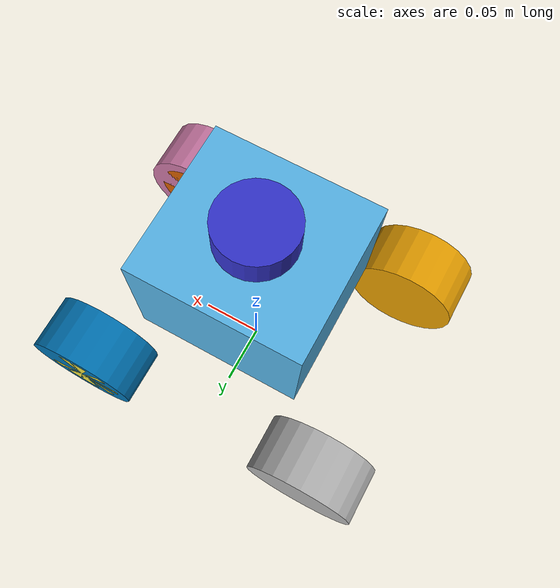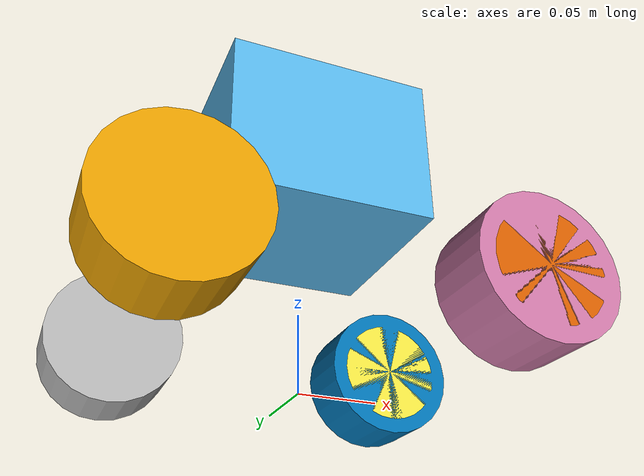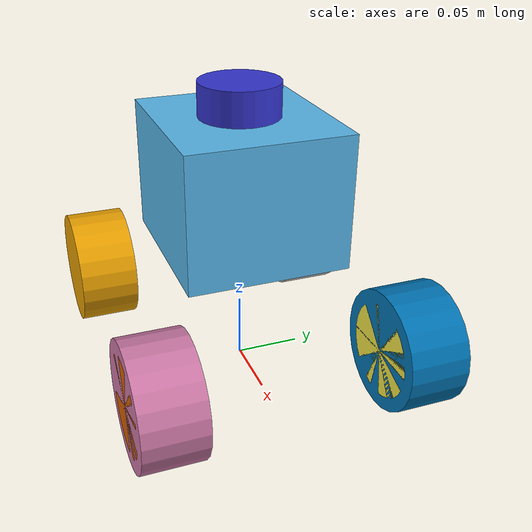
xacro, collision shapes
<?xml version="1.0"?>
<robot xmlns:xacro="http://www.ros.org/wiki/xacro" name="limo_with_laser_imu">
  <xacro:arg name="sensor_namespace" default="limo"/>
  <xacro:include filename="$(find simple_rbt)/model/limo/urdf/limo_ackerman.xacro"/>
  <xacro:include filename="$(find simple_rbt)/model/sensor/simple_laser_imu/model.xacro"/>
  <xacro:simple_laser_imu parent_link="base_link" xyz="0.0 0.0 0.05" rpy="0 0 0" sensor_namespace="$(arg sensor_namespace)" />
</robot>

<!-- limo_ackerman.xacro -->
<robot name="limo_ackerman" xmlns:xacro="http://ros.org/wiki/xacro">

    <xacro:arg name="robot_namespace" default="/" />
    <xacro:include filename="$(find simple_rbt)/model/limo/urdf/limo_xacro.xacro" />
    <xacro:include filename="$(find simple_rbt)/model/limo/urdf/limo_steering_hinge.xacro" />
    <xacro:include filename="$(find simple_rbt)/model/limo/urdf/limo_ackerman.gazebo" />

    <!-- Variables -->
    <xacro:property name="M_PI" value="3.14159"/>

    <!-- Vehicle Geometries -->
    <xacro:property name="base_x_size" value="0.13" />
    <xacro:property name="base_y_size" value="0.12" />
    <xacro:property name="base_z_size" value="0.10" />

    <xacro:property name="wheelbase" value="0.2"/>
    <xacro:property name="track" value="0.14"/>
    <xacro:property name="wheel_vertical_offset" value="-0.100998" />
    <xacro:property name="base_mass" value="2.1557"/>

    <xacro:property name="wheel_length" value="0.045" />
    <xacro:property name="wheel_radius" value="0.045" />
    <link name="base_footprint"/>

    <joint name="base_joint" type="fixed">
    <parent link="base_footprint"/>
    <child link="base_link"/>
    <origin xyz="0.0 0.0 0.15" rpy="0 0 0"/>
    </joint>
    <!-- Base link -->
    <link name="base_link">
        <visual>
            <origin xyz="0 0 -0.15" rpy="0 0 1.57" />
            <geometry>
                <mesh filename="package://simple_rbt/model/limo/meshes/limo_base.dae" scale="1 1 1"/>
            </geometry>
        </visual>
        <collision>
            <origin xyz="0 0 0" rpy="0 0 0" />
          <geometry>
              <box size="${base_x_size} ${base_y_size} ${base_z_size}"/>
          </geometry>
        </collision>
    </link>

    <link name="inertial_link">
        <inertial>
            <origin xyz="0.0 0.0 0.0" />
            <mass value="${base_mass}" />
            <inertia ixx="0.24" ixy="0" ixz="0"
                     iyy="0.96" iyz="0"
                     izz="0.96" />
        </inertial>
    </link>

    <joint name="inertial_joint" type="fixed">
        <origin xyz="0 0 0" rpy="0 0 0" />
        <parent link="base_link" />
        <child link="inertial_link" />
    </joint>

    <xacro:limo_left_steering_hinge parent_prefix="base_link" wheel_prefix="left_steering_hinge">
        <origin xyz="${wheelbase/2} ${track/2} ${wheel_vertical_offset}" rpy="0 0  0" />
    </xacro:limo_left_steering_hinge>

    <xacro:limo_right_steering_hinge parent_prefix="base_link" wheel_prefix="right_steering_hinge">
        <origin xyz="${wheelbase/2} ${-track/2} ${wheel_vertical_offset}" rpy="${M_PI} 0 0" />
    </xacro:limo_right_steering_hinge>

    <link name="rear_left_wheel_link">
        <inertial>
            <origin xyz="0 0 0" />
            <mass value="0.5" />
            <inertia ixx="0.01055" ixy="0" ixz="0" iyy="0.00075" iyz="0" izz="0.01055" />
        </inertial>
        <visual>
            <origin xyz="0 0 0" rpy="0 0 0" />
            <geometry>
                <mesh filename="package://simple_rbt/model/limo/meshes/limo_wheel.dae" />
            </geometry>
        </visual>
        <collision>
            <origin xyz="0 ${wheel_length/2} 0" rpy="1.57 0 0" />
          <geometry>
              <cylinder length="${wheel_length}" radius="${wheel_radius}" />
          </geometry>
        </collision>
    </link>
    <joint name="rear_left_wheel" type="continuous">
        <parent link="base_link"/>
        <child link="rear_left_wheel_link"/>
        <origin xyz="${-wheelbase/2} ${track/2} ${wheel_vertical_offset}" rpy="0 0 0" />
        <axis xyz="0 1 0"/>
    </joint>

    <link name="rear_right_wheel_link">
        <inertial>
            <origin xyz="0 0 0" />
            <mass value="0.5" />
            <inertia ixx="0.01055" ixy="0" ixz="0" iyy="0.00075" iyz="0" izz="0.01055" />
        </inertial>
        <visual>
            <origin xyz="0 0 0" rpy="0 0 0" />
            <geometry>
                <mesh filename="package://simple_rbt/model/limo/meshes/limo_wheel.dae" />
            </geometry>
        </visual>
            <collision>
                <origin xyz="0 ${wheel_length/2} 0" rpy="1.57 0 0" />
              <geometry>
                  <cylinder length="${wheel_length}" radius="${wheel_radius}" />
              </geometry>
            </collision>
        </link>

        <joint name="rear_right_wheel" type="continuous">
            <parent link="base_link"/>
            <child link="rear_right_wheel_link"/>
            <origin xyz="${-wheelbase/2} ${-track/2} ${wheel_vertical_offset}" rpy="${M_PI} 0 0" />
            <axis xyz="0 -1 0"/>
        </joint>
</robot>

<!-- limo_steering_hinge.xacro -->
<robot name="limo_steering_hinge" xmlns:xacro="http://ros.org/wiki/xacro">

    <xacro:macro name="limo_left_steering_hinge" params="parent_prefix wheel_prefix *joint_pose">
        <link name="${wheel_prefix}">
            <inertial>
              <mass value="0.25" />
              <inertia ixx="0.00525" ixy="0" ixz="0" iyy="0.00035" iyz="0" izz="0.00525" />
              <origin xyz="0 0 0" />

            </inertial>
            <visual>
                <origin xyz="0 0 0" rpy="0 0 0" />
                <geometry>
                  <cylinder length="0.0001" radius="0.0001" />
                </geometry>
            </visual>
            <collision>
              <origin xyz="0 ${wheel_length/2} 0" rpy="1.57 0 0" />
              <geometry>
                  <cylinder length="${wheel_length}" radius="${wheel_radius-0.01}" />
              </geometry>
            </collision>
        </link>

        <joint name="${wheel_prefix}_wheel" type="revolute">
            <parent link="${parent_prefix}"/>
            <child link="${wheel_prefix}"/>
            <xacro:insert_block name="joint_pose"/>
            <axis xyz="0 0 1" />
            <limit lower="-0.523598767" upper="0.523598767" effort="5" velocity="0.5" />
            <dynamics damping="1.0" friction="2.0"/>

        </joint>

        <link name="front_left_wheel_link">
          <inertial>
            <mass value="0.25" />
            <inertia ixx="0.00525" ixy="0" ixz="0" iyy="0.00035" iyz="0" izz="0.00525" />
            <origin xyz="0 0 0" />

          </inertial>
          <visual>
              <origin xyz="0 0 0" rpy="0 0 0" />
              <geometry>
                  <mesh filename="package://simple_rbt/model/limo/meshes/limo_wheel.dae" />
              </geometry>
          </visual>
          <collision>
            <origin xyz="0 ${wheel_length/2} 0" rpy="1.57 0 0" />
            <geometry>
                <cylinder length="${wheel_length}" radius="${wheel_radius}" />
            </geometry>
          </collision>
      </link>

      <joint name="front_left_wheel" type="continuous">
          <parent link="${wheel_prefix}"/>
          <child link="front_left_wheel_link"/>
          <origin xyz="0 0 0" rpy="0 0  0" />
          <axis xyz="0 1 0"/>
      </joint>
    </xacro:macro>

    <xacro:macro name="limo_right_steering_hinge" params="parent_prefix wheel_prefix *joint_pose">
        <link name="${wheel_prefix}">
          <inertial>
            <mass value="0.25" />
            <inertia ixx="0.00525" ixy="0" ixz="0" iyy="0.00035" iyz="0" izz="0.00525" />
            <origin xyz="0 0 0" />

          </inertial>
            <visual>
                <origin xyz="0 0 0" rpy="0 0 0" />
                <geometry>
                  <cylinder length="0.0001" radius="0.0001" />
                </geometry>
            </visual>
            <collision>
              <origin xyz="0 ${wheel_length/2} 0" rpy="1.57 0 0" />
              <geometry>
                  <cylinder length="${wheel_length}" radius="${wheel_radius-0.01}" />
              </geometry>
            </collision>
        </link>

        <joint name="${wheel_prefix}_wheel" type="revolute">
            <parent link="${parent_prefix}"/>
            <child link="${wheel_prefix}"/>
            <xacro:insert_block name="joint_pose"/>
            <axis xyz="0 0 -1"/>
            <limit lower="-0.523598767" upper="0.523598767" effort="5" velocity="0.5" />
            <dynamics damping="1.0" friction="2.0"/>
        </joint>

        <link name="front_right_wheel_link">
          <inertial>
            <mass value="0.25" />
            <inertia ixx="0.00525" ixy="0" ixz="0" iyy="0.00035" iyz="0" izz="0.00525" />
            <origin xyz="0 0 0" />
          </inertial>
          <visual>
              <origin xyz="0 0 0" rpy="0 0 0" />
              <geometry>
                  <mesh filename="package://simple_rbt/model/limo/meshes/limo_wheel.dae" />
              </geometry>
          </visual>
          <collision>
            <origin xyz="0 ${wheel_length/2} 0" rpy="1.57 0 0" />
            <geometry>
                <cylinder length="${wheel_length}" radius="${wheel_radius}" />
            </geometry>
          </collision>
      </link>

      <joint name="front_right_wheel" type="continuous">
          <parent link="${wheel_prefix}"/>
          <child link="front_right_wheel_link"/>
          <origin xyz="0 0 0" rpy="0 0  0" />
          <axis xyz="0 -1 0"/>
      </joint>
    </xacro:macro>
</robot>

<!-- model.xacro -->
<robot xmlns:xacro="http://www.ros.org/wiki/xacro">

    <xacro:macro name="simple_laser_imu" params="parent_link xyz rpy sensor_namespace">

        <link name="imu_link">
            <inertial>
                <mass value="0.01"/>
                <inertia ixx="1e-6" ixy="0.0" ixz="0.0" iyy="1e-6" iyz="0.0" izz="1e-6"/>
            </inertial>
        </link>

        <link name="laser_link">
            <inertial>
                <mass value="0.1"/>
                <inertia ixx="0.0001" ixy="0.0" ixz="0.0" iyy="0.0001" iyz="0.0" izz="0.0001"/>
            </inertial>

            <visual>
                <geometry>
                    <cylinder radius="0.03" length="0.05"/>
                </geometry>
                <material name="blue">
                    <color rgba="0.2 0.2 0.8 1"/>
                </material>
            </visual>

            <collision>
                <geometry>
                    <cylinder radius="0.03" length="0.05"/>
                </geometry>
            </collision>
        </link>

        <joint name="laser_joint" type="fixed">
            <parent link="${parent_link}"/>
            <child link="laser_link"/>
            <origin xyz="${xyz}" rpy="${rpy}"/>
        </joint>

        <joint name="laser_imu_joint" type="fixed">
            <parent link="laser_link"/>
            <child link="imu_link"/>
            <origin xyz="0 0 -0.06" rpy="0 0 0"/>
        </joint>

        <gazebo reference="laser_link">
            <sensor type="ray" name="laser_sensor">
                <pose>0 0 0 0 0 0</pose>
                <always_on>true</always_on>
                <update_rate>10</update_rate>
                <visualize>true</visualize>
                <ray>
                    <scan>
                        <horizontal>
                            <samples>720</samples>
                            <resolution>1</resolution>
                            <min_angle>-3.141592653589793</min_angle>
                            <max_angle>3.141592653589793</max_angle>
                        </horizontal>
                    </scan>
                    <range>
                        <min>0.12</min>
                        <max>8.0</max>
                        <resolution>0.01</resolution>
                    </range>
                    <noise>
                        <type>gaussian</type>
                        <mean>0.0</mean>
                        <stddev>0.01</stddev>
                    </noise>
                </ray>

                <plugin name="gazebo_ros_laser_controller" filename="libgazebo_ros_laser.so">
                    <robotNamespace>${sensor_namespace}</robotNamespace>
                    <topicName>laser/scan</topicName>
                    <frameName>laser_link</frameName>
                </plugin>
            </sensor>
        </gazebo>

        <gazebo reference="imu_link">
            <sensor name="imu_sensor" type="imu">
                <pose>0 0 0 0 0 0</pose>
                <always_on>true</always_on>
                <update_rate>200</update_rate>
                <visualize>true</visualize>

                <plugin filename="libgazebo_ros_imu_sensor.so" name="imu_plugin">
                    <robotNamespace>${sensor_namespace}</robotNamespace>
                    <topicName>laser/imu</topicName>
                    <bodyName>imu_link</bodyName>
                    <updateRateHZ>200.0</updateRateHZ>
                    <gaussianNoise>0.0</gaussianNoise>
                    <xyzOffset>0 0 0</xyzOffset>
                    <rpyOffset>0 0 0</rpyOffset>
                    <frameName>imu_link</frameName>
                </plugin>
            </sensor>
        </gazebo>

    </xacro:macro>

</robot>
